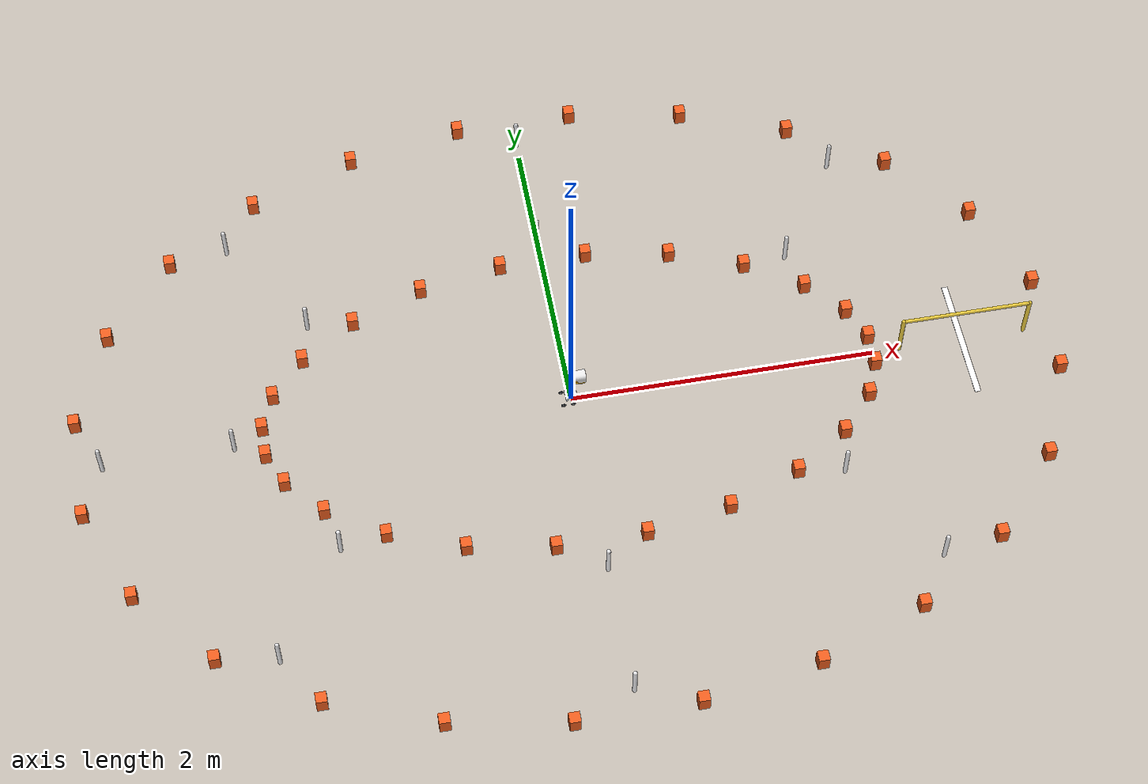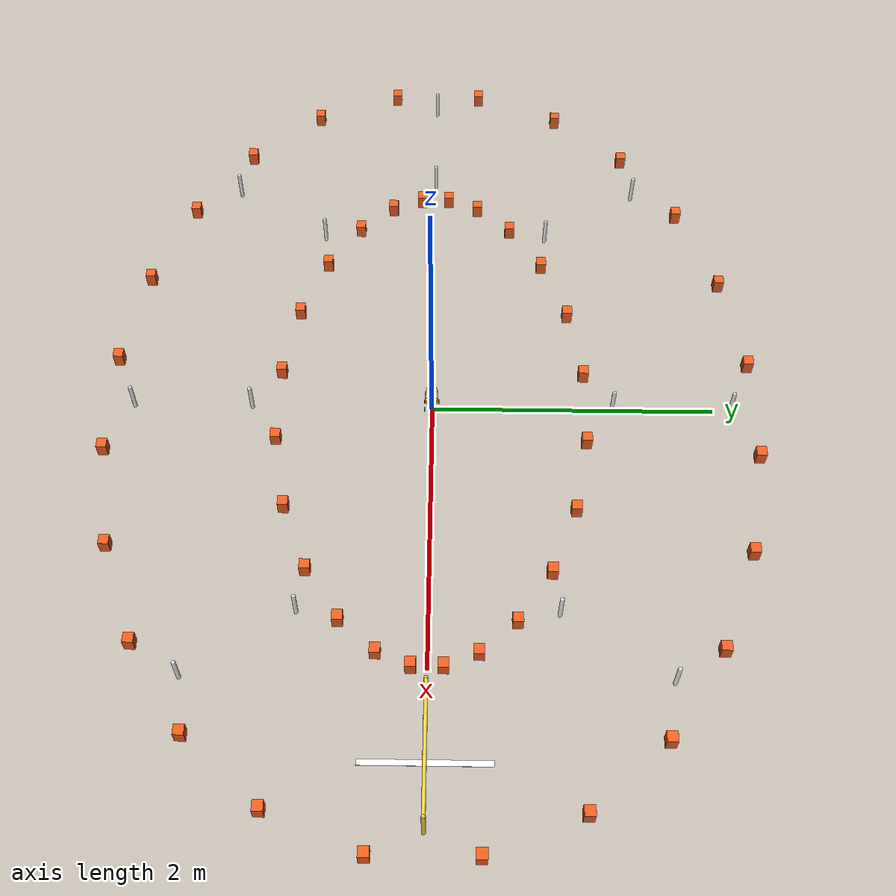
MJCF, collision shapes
<mujoco model="scene_race">
    <include file="robot_allcollisions_rollers_cam.xml" />

    <visual>
        <headlight diffuse="0.25 0.25 0.25" ambient="0.22 0.22 0.24" specular="0.05 0.05 0.05" />
        <rgba haze="0.78 0.83 0.89 1" />
        <global azimuth="140" elevation="-22" offwidth="1920" offheight="1080" />
        <quality shadowsize="8192" offsamples="8" />
        <map fogstart="14" fogend="55" shadowclip="3" shadowscale="1.2" />
    </visual>

    <asset>
        <texture type="skybox" name="sky"
            fileright="sky_right.png" fileleft="sky_left.png"
            filefront="sky_front.png" fileback="sky_back.png"
            fileup="sky_up.png"       filedown="sky_down.png" />
        <texture type="2d" name="groundplane" file="ground_concrete.png" />
        <material name="groundplane" texture="groundplane" texuniform="true" texrepeat="0.6 0.6"
            reflectance="0.02" specular="0.12" shininess="0.08" />
        <material name="gate"      rgba="0.95 0.95 0.96 1" specular="0.4" shininess="0.3"/>
        <material name="gate_start" rgba="0.95 0.82 0.25 1" specular="0.4" shininess="0.3"/>
        <material name="startline" rgba="0.96 0.96 0.97 1"/>
        <material name="cone"      rgba="0.92 0.36 0.12 1" specular="0.2" shininess="0.1"/>
    </asset>

    <worldbody>
        <light name="key"  pos="1.8 -2.2 3.0" dir="-0.45 0.55 -0.75" directional="true"
               diffuse="0.85 0.83 0.78" specular="0.25 0.25 0.25" castshadow="true" />
        <light name="fill" pos="-2.5 2.0 2.0" dir="0.6 -0.5 -0.62" directional="true"
               diffuse="0.22 0.24 0.28" specular="0 0 0" castshadow="false" />
        <geom name="floor" size="0 0 0.05" pos="0 0 0" type="plane" material="groundplane" />

        <!-- RACE:BEGIN -->
        <geom name="gate0_l" type="capsule" size="0.014" material="gate_start"
              fromto="3.020 0.000 0 3.020 0.000 0.30"/>
        <geom name="gate0_r" type="capsule" size="0.014" material="gate_start"
              fromto="2.180 0.000 0 2.180 0.000 0.30"/>
        <geom name="gate0_bar" type="capsule" size="0.012" material="gate_start"
              fromto="3.020 0.000 0.30 2.180 0.000 0.30"/>
        <geom name="start_line" type="box" size="0.02 0.42 0.001"
              pos="2.600 0.000 0.001" material="startline"/>
        <geom name="gate1_l" type="capsule" size="0.014" material="gate"
              fromto="2.068 1.554 0 2.068 1.554 0.22"/>
        <geom name="gate1_r" type="capsule" size="0.014" material="gate"
              fromto="1.609 0.851 0 1.609 0.851 0.22"/>
        <geom name="gate2_l" type="capsule" size="0.014" material="gate"
              fromto="0.000 2.120 0 0.000 2.120 0.22"/>
        <geom name="gate2_r" type="capsule" size="0.014" material="gate"
              fromto="0.000 1.280 0 0.000 1.280 0.22"/>
        <geom name="gate3_l" type="capsule" size="0.014" material="gate"
              fromto="-2.068 1.554 0 -2.068 1.554 0.22"/>
        <geom name="gate3_r" type="capsule" size="0.014" material="gate"
              fromto="-1.609 0.851 0 -1.609 0.851 0.22"/>
        <geom name="gate4_l" type="capsule" size="0.014" material="gate"
              fromto="-3.020 0.000 0 -3.020 0.000 0.22"/>
        <geom name="gate4_r" type="capsule" size="0.014" material="gate"
              fromto="-2.180 0.000 0 -2.180 0.000 0.22"/>
        <geom name="gate5_l" type="capsule" size="0.014" material="gate"
              fromto="-2.068 -1.554 0 -2.068 -1.554 0.22"/>
        <geom name="gate5_r" type="capsule" size="0.014" material="gate"
              fromto="-1.609 -0.851 0 -1.609 -0.851 0.22"/>
        <geom name="gate6_l" type="capsule" size="0.014" material="gate"
              fromto="-0.000 -2.120 0 -0.000 -2.120 0.22"/>
        <geom name="gate6_r" type="capsule" size="0.014" material="gate"
              fromto="-0.000 -1.280 0 -0.000 -1.280 0.22"/>
        <geom name="gate7_l" type="capsule" size="0.014" material="gate"
              fromto="2.068 -1.554 0 2.068 -1.554 0.22"/>
        <geom name="gate7_r" type="capsule" size="0.014" material="gate"
              fromto="1.609 -0.851 0 1.609 -0.851 0.22"/>
        <geom name="cone0" type="box" size="0.035 0.035 0.055" pos="3.166 0.338 0.055" material="cone"/>
        <geom name="cone1" type="box" size="0.035 0.035 0.055" pos="1.990 0.103 0.055" material="cone"/>
        <geom name="cone2" type="box" size="0.035 0.035 0.055" pos="2.910 0.970 0.055" material="cone"/>
        <geom name="cone3" type="box" size="0.035 0.035 0.055" pos="1.896 0.329 0.055" material="cone"/>
        <geom name="cone4" type="box" size="0.035 0.035 0.055" pos="2.454 1.490 0.055" material="cone"/>
        <geom name="cone5" type="box" size="0.035 0.035 0.055" pos="1.675 0.577 0.055" material="cone"/>
        <geom name="cone6" type="box" size="0.035 0.035 0.055" pos="1.854 1.884 0.055" material="cone"/>
        <geom name="cone7" type="box" size="0.035 0.035 0.055" pos="1.315 0.812 0.055" material="cone"/>
        <geom name="cone8" type="box" size="0.035 0.035 0.055" pos="1.154 2.149 0.055" material="cone"/>
        <geom name="cone9" type="box" size="0.035 0.035 0.055" pos="0.840 0.991 0.055" material="cone"/>
        <geom name="cone10" type="box" size="0.035 0.035 0.055" pos="0.394 2.283 0.055" material="cone"/>
        <geom name="cone11" type="box" size="0.035 0.035 0.055" pos="0.290 1.087 0.055" material="cone"/>
        <geom name="cone12" type="box" size="0.035 0.035 0.055" pos="-0.388 2.283 0.055" material="cone"/>
        <geom name="cone13" type="box" size="0.035 0.035 0.055" pos="-0.286 1.088 0.055" material="cone"/>
        <geom name="cone14" type="box" size="0.035 0.035 0.055" pos="-1.149 2.150 0.055" material="cone"/>
        <geom name="cone15" type="box" size="0.035 0.035 0.055" pos="-0.836 0.992 0.055" material="cone"/>
        <geom name="cone16" type="box" size="0.035 0.035 0.055" pos="-1.850 1.886 0.055" material="cone"/>
        <geom name="cone17" type="box" size="0.035 0.035 0.055" pos="-1.312 0.813 0.055" material="cone"/>
        <geom name="cone18" type="box" size="0.035 0.035 0.055" pos="-2.450 1.493 0.055" material="cone"/>
        <geom name="cone19" type="box" size="0.035 0.035 0.055" pos="-1.673 0.579 0.055" material="cone"/>
        <geom name="cone20" type="box" size="0.035 0.035 0.055" pos="-2.908 0.974 0.055" material="cone"/>
        <geom name="cone21" type="box" size="0.035 0.035 0.055" pos="-1.895 0.330 0.055" material="cone"/>
        <geom name="cone22" type="box" size="0.035 0.035 0.055" pos="-3.165 0.343 0.055" material="cone"/>
        <geom name="cone23" type="box" size="0.035 0.035 0.055" pos="-1.989 0.104 0.055" material="cone"/>
        <geom name="cone24" type="box" size="0.035 0.035 0.055" pos="-3.166 -0.338 0.055" material="cone"/>
        <geom name="cone25" type="box" size="0.035 0.035 0.055" pos="-1.990 -0.103 0.055" material="cone"/>
        <geom name="cone26" type="box" size="0.035 0.035 0.055" pos="-2.910 -0.970 0.055" material="cone"/>
        <geom name="cone27" type="box" size="0.035 0.035 0.055" pos="-1.896 -0.329 0.055" material="cone"/>
        <geom name="cone28" type="box" size="0.035 0.035 0.055" pos="-2.454 -1.490 0.055" material="cone"/>
        <geom name="cone29" type="box" size="0.035 0.035 0.055" pos="-1.675 -0.577 0.055" material="cone"/>
        <geom name="cone30" type="box" size="0.035 0.035 0.055" pos="-1.854 -1.884 0.055" material="cone"/>
        <geom name="cone31" type="box" size="0.035 0.035 0.055" pos="-1.315 -0.812 0.055" material="cone"/>
        <geom name="cone32" type="box" size="0.035 0.035 0.055" pos="-1.154 -2.149 0.055" material="cone"/>
        <geom name="cone33" type="box" size="0.035 0.035 0.055" pos="-0.840 -0.991 0.055" material="cone"/>
        <geom name="cone34" type="box" size="0.035 0.035 0.055" pos="-0.394 -2.283 0.055" material="cone"/>
        <geom name="cone35" type="box" size="0.035 0.035 0.055" pos="-0.290 -1.087 0.055" material="cone"/>
        <geom name="cone36" type="box" size="0.035 0.035 0.055" pos="0.388 -2.283 0.055" material="cone"/>
        <geom name="cone37" type="box" size="0.035 0.035 0.055" pos="0.286 -1.088 0.055" material="cone"/>
        <geom name="cone38" type="box" size="0.035 0.035 0.055" pos="1.149 -2.150 0.055" material="cone"/>
        <geom name="cone39" type="box" size="0.035 0.035 0.055" pos="0.836 -0.992 0.055" material="cone"/>
        <geom name="cone40" type="box" size="0.035 0.035 0.055" pos="1.850 -1.886 0.055" material="cone"/>
        <geom name="cone41" type="box" size="0.035 0.035 0.055" pos="1.312 -0.813 0.055" material="cone"/>
        <geom name="cone42" type="box" size="0.035 0.035 0.055" pos="2.450 -1.493 0.055" material="cone"/>
        <geom name="cone43" type="box" size="0.035 0.035 0.055" pos="1.673 -0.579 0.055" material="cone"/>
        <geom name="cone44" type="box" size="0.035 0.035 0.055" pos="2.908 -0.974 0.055" material="cone"/>
        <geom name="cone45" type="box" size="0.035 0.035 0.055" pos="1.895 -0.330 0.055" material="cone"/>
        <geom name="cone46" type="box" size="0.035 0.035 0.055" pos="3.165 -0.343 0.055" material="cone"/>
        <geom name="cone47" type="box" size="0.035 0.035 0.055" pos="1.989 -0.104 0.055" material="cone"/>
        <!-- RACE:END -->
    </worldbody>
    <keyframe>
        <key name="INIT" qpos="
        2.6 -0.35 0.12 0.7071 0 0 0.7071
        0 0 0 0 0 0 0
        0 0 0 0
        0 0 0 0 0 0 0" ctrl="0 0 0 0 0 0 0 0 0 0 0 0 0 0"/>
        <!-- STAND2: trunk shifted ~5mm forward (CoM over ankle axis). Leg pitch
             leaned forward vs old STAND: hip_pitch 30->26.24deg, ankle 30->25.95deg,
             knee 0->0.28deg. -->
        <key name="STAND" qpos="
        2.6 -0.35 0.12 0.7071 0 0 0.7071

        0 -0.08726646259971647 -0.457924 -0.004940 0.452984  0 0
        0.3490658503988659 0.3490658503988659 0 0
        0 0.08726646259971647 0.457924 0.004940 -0.452984 0 0"
         ctrl="
        0 -0.08726646259971647 -0.457924 -0.004940 0.452984
        0.3490658503988659 0.3490658503988659 0 0
        0 0.08726646259971647 0.457924 0.004940 -0.452984"
        />
        <key name="SIT" qpos="
        2.6 -0.35 0.07 0.7071 0 0 0.7071
        0 0 -0.5236 1.0472 0 0
        0 0.5 1.6 0
        0 0 0 0.5236 -1.0472 0 0 0" ctrl="
        0 0 -0.5236 1.0472 0
        0.5 1.6 0 0 0
        0 0.5236 -1.0472 0"/>
        <key name="FOLD" qpos="
        2.6 -0.35 0.07 0.7071 0 0 0.7071
        0 0 1.57 1.57 0 0 0
        1 1 0 0 0
        0 -1.57 -1.57 0 0 0" ctrl="
        0 0 1.57 1.57 0
        1 1 0 0
        0 0 -1.57 -1.57 0"/>
    </keyframe>

</mujoco>

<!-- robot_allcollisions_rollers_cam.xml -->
<!-- Generated using onshape-to-robot -->
<!-- Onshape https://cad.onshape.com/documents/804927696f06d877f3f1803e/w/5b75db19292e71970de02dee/e/ed34b749f5a3718f68024fd5 -->
<mujoco model="microduck">
  <compiler angle="radian" meshdir="assets" autolimits="true"/>
  <default>
    <default class="microduck">
      <joint frictionloss="0.1" armature="0.005"/>
      <position kp="50" dampratio="1"/>
      <default class="visual">
        <geom type="mesh" contype="0" conaffinity="0" group="2"/>
      </default>
      <default class="collision">
        <geom group="3"/>
      </default>
    </default>
  </default>
  <!-- Additional joints_properties.xml -->
  <default>
    <default class="perfect_actuator">
      <geom contype="0" conaffinity="0"/>
      <joint damping="0.15" frictionloss="0.1" armature="0.001"/>
      <position kp="10.0" kv="0.1" forcerange="-20.0 20.0"/>
    </default>
    <default class="chosen_actuator_old">
      <geom contype="0" conaffinity="0"/>
      <joint damping="0.048" frictionloss="0.006" armature="0.002"/>
      <position kp="0.52" kv="0.0" forcerange="-0.91 0.91" ctrlrange="-10.0 10.0"/>
    </default>
    <default class="chosen_actuator_new">
      <!-- removing contaminated data -->
      <geom contype="0" conaffinity="0"/>
      <joint damping="0.041" frictionloss="0.032" armature="0.002"/>
      <position kp="0.386" kv="0.0" forcerange="-0.67 0.67" ctrlrange="-10.0 10.0"/>
    </default>
    <default class="chosen_actuator_antoine">
      <geom contype="0" conaffinity="0"/>
      <joint damping="0.044" frictionloss="0.013" armature="0.0017"/>
      <position kp="0.43" kv="0.0" forcerange="-0.75 0.75" ctrlrange="-10.0 10.0"/>
    </default>
    <default class="chosen_actuator">
      <!-- marc -->
      <geom contype="0" conaffinity="0"/>
      <joint damping="0.053" frictionloss="0.0048" armature="0.0018"/>
      <!-- 200 kp -->
      <position kp="0.55" kv="0.0" forcerange="-0.96 0.96" ctrlrange="-10.0 10.0"/>
      <!-- 125 kp -->
    </default>
    <default class="passive_wheel">
      <geom contype="0" conaffinity="0"/>
      <joint damping="0.0" frictionloss="0.0" armature="0.0001"/>
    </default>
    <default class="passive_joint">
      <geom contype="0" conaffinity="0"/>
      <joint damping="0.0" frictionloss="0.0" armature="0.0001"/>
    </default>
  </default>
  <!-- Additional sensors.xml -->
  <sensor>
    <framequat name="orientation" objtype="site" noise="0.001" objname="imu"/>
    <gyro name="angular-velocity" site="imu" noise="0.005"/>
    <gyro name="imu_ang_vel" site="imu"/>
    <velocimeter name="imu_lin_vel" site="imu"/>
    <accelerometer name="imu_accel" site="imu"/>
    <subtreeangmom name="root_angmom" body="trunk_base"/>
  </sensor>
  <!-- Additional additional.xml -->
  <default>
    <default class="self_collision_only">
      <geom group="3" contype="2" conaffinity="2"/>
    </default>
    <equality solref="0.002 1" solimp="0.99 0.999 0.0005 0.5 2"/>
  </default>
  <!-- Jaw collision mesh overlaps the bottom head shell by ~2cm because the closed -->
  <!-- loop linkage positions it inside the head. Without these excludes the -->
  <!-- self-collision sensor reports a constant 2 contacts, giving a -->
  <!-- permanent ~-2.0 reward penalty in the standup env. -->
  <worldbody>
    <!-- Link trunk_base -->
    <body name="trunk_base" pos="0 0 0.12" quat="1 0 0 0" childclass="microduck">
      <freejoint name="trunk_base_freejoint"/>
      <inertial pos="-0.0226332 -2.70828e-05 0.00280064" mass="0.199224" fullinertia="0.000123975 0.000145931 0.000115351 7.1651e-08 -2.06915e-05 1.32429e-07"/>
      <!-- Part seeed_bearing__configuration__22x16x4 -->
      <geom type="mesh" class="visual" pos="0.006 0.0175 -0.005" quat="1 -0 -0 0" mesh="seeed_bearing__configuration__22x16x4" material="seeed_bearing__configuration__22x16x4_material"/>
      <!-- Part right_shell -->
      <geom type="mesh" class="visual" pos="0.004 -0.0005 -0.0175" quat="0.707107 -0 -0 0.707107" mesh="right_shell" material="right_shell_material"/>
      <!-- Part banana_pcb_locker -->
      <geom type="mesh" class="visual" pos="0.0042 -0 -0.0175215" quat="0.707107 -0 0 0.707107" mesh="banana_pcb_locker" material="banana_pcb_locker_material"/>
      <!-- Part trunk_base -->
      <geom type="mesh" class="visual" pos="0.004 -0 -0.0175" quat="0.707107 -0 -0 0.707107" mesh="trunk_base" material="trunk_base_material"/>
      <!-- Part xl330 -->
      <geom type="mesh" class="visual" pos="0.006 0.0175 0.0115" quat="0 0.707107 -0 0.707107" mesh="xl330" material="xl330_material"/>
      <!-- Part power_support -->
      <geom type="mesh" class="visual" pos="0.004 -0 -0.0175215" quat="0.707107 -0 0 0.707107" mesh="power_support" material="power_support_material"/>
      <geom type="mesh" class="self_collision_only" pos="0.004 -0 -0.0175215" quat="0.707107 -0 0 0.707107" mesh="power_support" material="power_support_material"/>
      <!-- Part np_f970 -->
      <geom type="mesh" class="visual" pos="-0.0359693 0 -0.00385049" quat="0.00617059 0.70708 -0.70708 -0.00617059" mesh="np_f970" material="np_f970_material"/>
      <geom type="mesh" class="collision" pos="-0.0359693 0 -0.00385049" quat="0.00617059 0.70708 -0.70708 -0.00617059" mesh="np_f970" material="np_f970_material"/>
      <!-- Part xl330_2 -->
      <geom type="mesh" class="visual" pos="0.006 -0.0175 0.0115" quat="0 0.707107 -0 0.707107" mesh="xl330" material="xl330_material"/>
      <!-- Part left_shell -->
      <geom type="mesh" class="visual" pos="0.004 -0 -0.0175785" quat="0.707107 0 -0 0.707107" mesh="left_shell" material="left_shell_material"/>
      <!-- Part seeed_bearing__configuration__22x16x4_2 -->
      <geom type="mesh" class="visual" pos="0.006 -0.0175 -0.005" quat="1 -0 -0 0" mesh="seeed_bearing__configuration__22x16x4" material="seeed_bearing__configuration__22x16x4_material"/>
      <!-- Frame imu -->
      <site group="3" name="imu" pos="-0.021 6.64098e-05 -0.0146984" quat="1 -0 -0 0"/>
      <!-- Link yaw2roll -->
      <body name="yaw2roll" pos="0.006 0.0175 -0.005" quat="0 -0.707107 -0.707107 -0">
        <!-- Joint from trunk_base to yaw2roll -->
        <joint axis="0 0 1" name="left_hip_yaw" type="hinge" range="-0.4363323129985824 0.5235987755982988" class="chosen_actuator"/>
        <inertial pos="-8.8e-11 0.00099414 0.0168917" mass="0.0230406" fullinertia="4.1964e-06 3.41752e-06 2.3265e-06 -0 -0 -5.0881e-08"/>
        <!-- Part yaw2roll -->
        <geom type="mesh" class="visual" pos="-0.0175 -0.002 0.0125" quat="0 1 0 0" mesh="yaw2roll" material="yaw2roll_material"/>
        <!-- Part xl330_3 -->
        <geom type="mesh" class="visual" pos="-0 0 0.0125" quat="0 -0.707107 0.707107 -0" mesh="xl330" material="xl330_material"/>
        <!-- Part seeed_bearing__configuration__22x16x4_3 -->
        <geom type="mesh" class="visual" pos="-0 0.0165 0.0125" quat="0.5 0.5 0.5 -0.5" mesh="seeed_bearing__configuration__22x16x4" material="seeed_bearing__configuration__22x16x4_material"/>
        <!-- Part bearing_roll -->
        <geom type="mesh" class="visual" pos="-0.0175 -0.002 0.0125" quat="0 -1 -0 -0" mesh="bearing_roll" material="bearing_roll_material"/>
        <!-- Link hip_l -->
        <body name="hip_l" pos="0 0.0165 0.0125" quat="0.707107 -0.707107 -0 -0">
          <!-- Joint from yaw2roll to hip_l -->
          <joint axis="0 0 1" name="left_hip_roll" type="hinge" range="-0.3839724354387525 0.3839724354387525" class="chosen_actuator"/>
          <inertial pos="0.014815 1.6179e-08 -0.00829992" mass="0.00618934" fullinertia="8.60626e-07 1.15753e-06 6.51588e-07 1e-12 3.89882e-07 -1e-12"/>
          <!-- Part seeed_bearing__configuration__22x16x4_4 -->
          <geom type="mesh" class="visual" pos="0.021 0 -0.0185" quat="0.5 0.5 0.5 0.5" mesh="seeed_bearing__configuration__22x16x4" material="seeed_bearing__configuration__22x16x4_material"/>
          <!-- Part hip_l -->
          <geom type="mesh" class="visual" pos="-0.0175 0 -0.0185" quat="0.707107 -0.707107 0 -0" mesh="hip_l" material="hip_l_material"/>
          <geom type="mesh" class="collision" pos="-0.0175 0 -0.0185" quat="0.707107 -0.707107 0 -0" mesh="hip_l" material="hip_l_material"/>
          <!-- Link upper_leg_left -->
          <body name="upper_leg_left" pos="0.025 0 -0.0185" quat="0.5 -0.5 0.5 -0.5">
            <!-- Joint from hip_l to upper_leg_left -->
            <joint axis="0 0 1" name="left_hip_pitch" type="hinge" range="-1.570796326795005 1.5707963267947882" class="chosen_actuator"/>
            <inertial pos="0.006766 0.0228838 0.0134531" mass="0.0482067" fullinertia="1.68753e-05 1.03691e-05 1.98269e-05 -4.41852e-06 2.27982e-07 3.89298e-07"/>
            <!-- Part upper_leg_left -->
            <geom type="mesh" class="visual" pos="-0 -0 -0.0425" quat="0.5 -0.5 -0.5 -0.5" mesh="upper_leg_left" material="upper_leg_left_material"/>
            <!-- Part xl330_4 -->
            <geom type="mesh" class="visual" pos="0.022 0.0357771 0.0125" quat="0 -0.707107 -0 -0.707107" mesh="xl330" material="xl330_material"/>
            <!-- Part upper_leg_rigidity_plate -->
            <geom type="mesh" class="visual" pos="0 -0 -0.0425" quat="0.5 -0.5 -0.5 -0.5" mesh="upper_leg_rigidity_plate" material="upper_leg_rigidity_plate_material"/>
            <!-- Part seeed_bearing__configuration__22x16x4_5 -->
            <geom type="mesh" class="visual" pos="0.022 0.0357771 -0.004" quat="0 0 0 1" mesh="seeed_bearing__configuration__22x16x4" material="seeed_bearing__configuration__22x16x4_material"/>
            <!-- Part xl330_5 -->
            <geom type="mesh" class="visual" pos="-0 -0 0.0125" quat="0.5 0.5 -0.5 0.5" mesh="xl330" material="xl330_material"/>
            <!-- Link leg -->
            <body name="leg" pos="0.022 0.0357771 -0.004" quat="0 0.707107 0.707107 0">
              <!-- Joint from upper_leg_left to leg -->
              <joint axis="0 0 1" name="left_knee" type="hinge" range="-1.570796326795012 1.570796326794781" class="chosen_actuator"/>
              <inertial pos="-1.52e-10 0.0318937 -0.00953505" mass="0.0215844" fullinertia="5.25056e-06 2.15507e-06 4.33925e-06 -1e-12 0 7.65005e-07"/>
              <!-- Part leg -->
              <geom type="mesh" class="visual" pos="-0.022 0.0357771 0.0385" quat="0.5 0.5 0.5 -0.5" mesh="leg" material="leg_material"/>
              <geom type="mesh" class="collision" pos="-0.022 0.0357771 0.0385" quat="0.5 0.5 0.5 -0.5" mesh="leg" material="leg_material"/>
              <!-- Part xl330_6 -->
              <geom type="mesh" class="visual" pos="0 0.042 -0.0115" quat="0.5 -0.5 -0.5 -0.5" mesh="xl330" material="xl330_material"/>
              <!-- Link ankle_l_v1 -->
              <body name="ankle_l_v1" pos="0 0.042 -0.026" quat="0 1 -0 0">
                <!-- Joint from leg to ankle_l_v1 -->
                <joint axis="0 0 1" name="left_ankle" type="hinge" range="-1.5707963267949054 1.5707963267948877" class="chosen_actuator"/>
                <inertial pos="-0.00680626 -0.0143677 -0.0151851" mass="0.02087" fullinertia="4.85529e-06 9.6767e-06 8.22681e-06 -3.18897e-07 5.6657e-08 1.31522e-07"/>
                <!-- Part roller_blade -->
                <geom type="mesh" class="visual" pos="-0.022 0.00622291 -0.0647" quat="0.5 -0.5 -0.5 -0.5" mesh="roller_blade" material="roller_blade_material"/>
                <!-- Part seeed_bearing__configuration_default -->
                <geom type="mesh" class="visual" pos="0 0 -0.0314" quat="0 -0 0 -1" mesh="seeed_bearing__configuration_default" material="seeed_bearing__configuration_default_material"/>
                <!-- Part ankle_l_v1 -->
                <geom type="mesh" class="visual" pos="-0.022 0.00622291 -0.0647" quat="0.5 -0.5 -0.5 -0.5" mesh="ankle_l_v1" material="ankle_l_v1_material"/>
                <!-- Frame left_foot -->
                <site group="3" name="left_foot" pos="-0 -0.0475 -0.0147" quat="0 -0 -0.707107 -0.707107"/>
                <!-- Link tire -->
                <body name="tire" pos="-0.0395 -0.0325 -0.0147" quat="1 -0 0 -0">
                  <!-- Joint from ankle_l_v1 to tire -->
                  <joint axis="0 0 1" name="passive_LF_wheel" class="passive_joint"/>
                  <inertial pos="-0 0 0" mass="0.00447401" fullinertia="2.8556e-07 2.8556e-07 5.3687e-07 -0 -6e-12 0"/>
                  <!-- Part tire -->
                  <geom type="mesh" class="visual" pos="0.0175 0.0387229 -0.05" quat="0.5 -0.5 -0.5 -0.5" mesh="tire" material="tire_material"/>
                  <geom type="mesh" class="collision" pos="0.0175 0.0387229 -0.05" quat="0.5 -0.5 -0.5 -0.5" mesh="tire" material="tire_material"/>
                  <!-- Part rim -->
                  <geom type="mesh" class="visual" pos="0.0175 0.0387229 -0.05" quat="0.5 -0.5 -0.5 -0.5" mesh="rim" material="rim_material"/>
                </body>
                <!-- Link tire_2 -->
                <body name="tire_2" pos="0.0255 -0.0325 -0.0147" quat="1 -0 0 -0">
                  <!-- Joint from ankle_l_v1 to tire_2 -->
                  <joint axis="0 0 1" name="passive_LR_wheel" class="passive_joint"/>
                  <inertial pos="-0 0 -0" mass="0.00447401" fullinertia="2.8556e-07 2.8556e-07 5.3687e-07 -0 -6e-12 0"/>
                  <!-- Part rim_2 -->
                  <geom type="mesh" class="visual" pos="0.0175 0.0387229 -0.05" quat="0.5 -0.5 -0.5 -0.5" mesh="rim" material="rim_material"/>
                  <!-- Part tire_2 -->
                  <geom type="mesh" class="visual" pos="0.0175 0.0387229 -0.05" quat="0.5 -0.5 -0.5 -0.5" mesh="tire" material="tire_material"/>
                  <geom type="mesh" class="collision" pos="0.0175 0.0387229 -0.05" quat="0.5 -0.5 -0.5 -0.5" mesh="tire" material="tire_material"/>
                </body>
              </body>
            </body>
          </body>
        </body>
      </body>
      <!-- Link neck -->
      <body name="neck" pos="0.026 0.0145 0.0324215" quat="0 0 0.707107 -0.707107">
        <!-- Joint from trunk_base to neck -->
        <joint axis="0 0 1" name="neck_pitch" type="hinge" range="-1.5707963267948966 1.0471975511965976" class="chosen_actuator"/>
        <inertial pos="0 -0.025 0.0141665" mass="0.0368414" fullinertia="1.72925e-05 3.12694e-06 1.63707e-05 0 0 0"/>
        <!-- Part neck -->
        <geom type="mesh" class="visual" pos="0.022 0.05 0.028" quat="0.5 0.5 0.5 -0.5" mesh="neck" material="neck_material"/>
        <!-- Part xl330_7 -->
        <geom type="mesh" class="visual" pos="0 0 0.0145" quat="0.5 -0.5 -0.5 -0.5" mesh="xl330" material="xl330_material"/>
        <!-- Part xl330_8 -->
        <geom type="mesh" class="visual" pos="0 -0.05 0.0145" quat="0.5 0.5 -0.5 0.5" mesh="xl330" material="xl330_material"/>
        <!-- Part neck_2 -->
        <geom type="mesh" class="visual" pos="0.022 0.05 0.003" quat="0.5 0.5 0.5 -0.5" mesh="neck" material="neck_material"/>
        <!-- Link neck_pitch -->
        <body name="neck_pitch" pos="0 -0.05 -0" quat="0 1 0 0">
          <camera name="duck_eye" pos="-0.028 0.012 -0.0145" fovy="78"
                  xyaxes="0 0 -1  0 1 0"/>
          <!-- Joint from neck to neck_pitch -->
          <joint axis="0 0 1" name="head_pitch" type="hinge" range="-1.5707963267948974 1.5707963267948957" class="chosen_actuator"/>
          <inertial pos="-6.533e-09 0.0116641 -0.0145" mass="0.00572" fullinertia="1.09186e-06 9.66855e-07 5.12111e-07 0 0 0"/>
          <!-- Part neck_pitch -->
          <geom type="mesh" class="visual" pos="-0 0.0287931 -0.0145" quat="0.5 -0.5 -0.5 -0.5" mesh="neck_pitch" material="neck_pitch_material"/>
          <!-- Part seeed_bearing__configuration__22x16x4_6 -->
          <geom type="mesh" class="visual" pos="-0 0.0207931 -0.0145" quat="0.707107 0.707107 0 0" mesh="seeed_bearing__configuration__22x16x4" material="seeed_bearing__configuration__22x16x4_material"/>
          <!-- Link yaw_roll_motion -->
          <body name="yaw_roll_motion" pos="-0 0.0186931 -0.0145" quat="0 0 -0.707107 -0.707107">
            <!-- Joint from neck_pitch to yaw_roll_motion -->
            <joint axis="0 0 1" name="head_yaw" type="hinge" range="-2.967059728390373 2.967059728390348" class="chosen_actuator"/>
            <inertial pos="-0.000166657 -0.00500964 0.0178065" mass="0.0486" fullinertia="6.97903e-06 8.10293e-06 9.57884e-06 3.21657e-07 -3.4797e-08 3.4295e-07"/>
            <!-- Part yaw_roll_motion -->
            <geom type="mesh" class="visual" pos="0 0 0.01" quat="0.707107 0 -0 0.707107" mesh="yaw_roll_motion" material="yaw_roll_motion_material"/>
            <!-- Part xl330_9 -->
            <geom type="mesh" class="visual" pos="0 0 0.0145" quat="0.5 -0.5 -0.5 -0.5" mesh="xl330" material="xl330_material"/>
            <!-- Part seeed_bearing__configuration__22x16x4_7 -->
            <geom type="mesh" class="visual" pos="-0.016 0 0.0145" quat="0.707107 -0 -0.707107 -0" mesh="seeed_bearing__configuration__22x16x4" material="seeed_bearing__configuration__22x16x4_material"/>
            <!-- Part seeed_bearing__configuration__22x16x4_8 -->
            <geom type="mesh" class="visual" pos="0.018 0 0.0145" quat="0.707107 -0 -0.707107 -0" mesh="seeed_bearing__configuration__22x16x4" material="seeed_bearing__configuration__22x16x4_material"/>
            <!-- Link jaw_soft -->
            <body name="jaw_soft" pos="-0.0179 0 0.0145" quat="0.707107 -0 -0.707107 -0">
              <!-- Joint from yaw_roll_motion to jaw_soft -->
              <joint axis="0 0 1" name="head_roll" type="hinge" range="-0.43633231299859127 0.4363323129985735" class="chosen_actuator"/>
              <inertial pos="0.00460523 0.00120047 -0.0324761" mass="0.188766" fullinertia="0.000320812 0.0002541 0.000149882 -6.32292e-07 6.57154e-06 4.18476e-06"/>
              <!-- Part lens -->
              <geom type="mesh" class="visual" pos="0.0155 -9.13778e-05 -0.05548" quat="0.5 -0.5 0.5 -0.5" mesh="lens" material="lens_material"/>
              <!-- Part face_part -->
              <geom type="mesh" class="visual" pos="-0.0045 -9.13778e-05 -0.0178" quat="0.5 0.5 0.5 0.5" mesh="face_part" material="face_part_material"/>
              <!-- Part xl330_10 -->
              <geom type="mesh" class="visual" pos="0.003 0.0255 -0.018" quat="0.707107 0 -0 -0.707107" mesh="xl330" material="xl330_material"/>
              <!-- Part jaw_soft -->
              <geom type="mesh" class="visual" pos="-0.0046 0 -0.0179996" quat="0.5 0.5 0.5 0.5" mesh="jaw_soft" material="jaw_soft_material"/>
              <!-- Part motor_support -->
              <geom type="mesh" class="visual" pos="-0.0045 0 -0.018" quat="0.5 0.5 0.5 0.5" mesh="motor_support" material="motor_support_material"/>
              <!-- Part top_head_shell -->
              <geom type="mesh" class="visual" pos="-0.0045 -0 -0.018" quat="0.5 0.5 0.5 0.5" mesh="top_head_shell" material="top_head_shell_material"/>
              <geom type="mesh" class="collision" pos="-0.0045 -0 -0.018" quat="0.5 0.5 0.5 0.5" mesh="top_head_shell" material="top_head_shell_material"/>
              <!-- Part xl330_11 -->
              <geom type="mesh" class="visual" pos="0 0 0.0145" quat="0.5 -0.5 -0.5 -0.5" mesh="xl330" material="xl330_material"/>
              <!-- Part seeed_bearing__configuration_default_2 -->
              <geom type="mesh" class="visual" pos="0.0032 -0.04 -0.018" quat="0.5 -0.5 0.5 0.5" mesh="seeed_bearing__configuration_default" material="seeed_bearing__configuration_default_material"/>
              <!-- Part elec_rpi_robot_hat_pcb -->
              <geom type="mesh" class="visual" pos="0.02694 0.0289936 -0.0519" quat="0.707107 0 0 -0.707107" mesh="elec_rpi_robot_hat_pcb" material="elec_rpi_robot_hat_pcb_material"/>
              <!-- Part soft_mouth_top -->
              <geom type="mesh" class="visual" pos="-0.00420071 1.7776e-08 -0.0180814" quat="0.5 0.5 0.5 0.5" mesh="soft_mouth_top" material="soft_mouth_top_material"/>
              <!-- Part noenoeil -->
              <geom type="mesh" class="visual" pos="-0.0045 -9.13778e-05 -0.0178" quat="0.5 0.5 0.5 0.5" mesh="noenoeil" material="noenoeil_material"/>
              <!-- Part jaw -->
              <geom type="mesh" class="visual" pos="-0.0045 0 -0.018" quat="0.5 0.5 0.5 0.5" mesh="jaw" material="jaw_material"/>
              <geom type="mesh" class="collision" pos="-0.0045 0 -0.018" quat="0.5 0.5 0.5 0.5" mesh="jaw" material="jaw_material"/>
              <!-- Part bottom_head_shell -->
              <geom type="mesh" class="visual" pos="-0.0043 -0 -0.018" quat="0.5 0.5 0.5 0.5" mesh="bottom_head_shell" material="bottom_head_shell_material"/>
              <geom type="mesh" class="collision" pos="-0.0043 -0 -0.018" quat="0.5 0.5 0.5 0.5" mesh="bottom_head_shell" material="bottom_head_shell_material"/>
              <!-- Part m12_lens_holder -->
              <geom type="mesh" class="visual" pos="0.0155 -9.13778e-05 -0.05558" quat="0.5 -0.5 0.5 -0.5" mesh="m12_lens_holder" material="m12_lens_holder_material"/>
              <!-- Part pcb__raspberry_pi_zero_2_w -->
              <geom type="mesh" class="visual" pos="0.015435 -1.13778e-05 -0.06001" quat="0.5 -0.5 -0.5 0.5" mesh="pcb__raspberry_pi_zero_2_w" material="pcb__raspberry_pi_zero_2_w_material"/>
              <!-- Part speaker -->
              <geom type="mesh" class="visual" pos="0.01 -0.016786 0.0260226" quat="0.5 0.5 0.5 0.5" mesh="speaker" material="speaker_material"/>
              <!-- Frame head_camera -->
              <site group="3" name="head_camera" pos="0.0155 -9.13778e-05 -0.0733" quat="0.707107 0 0.707107 -0"/>
              <camera name="head_camera" pos="0.0155 -9.13778e-05 -0.0733" quat="0 0 -1 0"/>
              <!-- Frame tof -->
              <site group="3" name="tof" pos="0.0135 0.0224086 -0.0733" quat="0.707107 0 0.707107 -0"/>
              <!-- Frame head_imu -->
              <site group="3" name="head_imu" pos="0.0152323 0.000111069 -0.05106" quat="1 0 0 -0"/>
              <!-- Frame mouth_tip -->
              <site group="3" name="mouth_tip" pos="-0.00809334 -0 -0.0777383" quat="0.704015 0 0.710185 -0"/>
            </body>
          </body>
        </body>
      </body>
      <!-- Link bearing_roll -->
      <body name="bearing_roll" pos="0.006 -0.0175 -0.005" quat="0 0.707107 0.707107 0">
        <!-- Joint from trunk_base to bearing_roll -->
        <joint axis="0 0 1" name="right_hip_yaw" type="hinge" range="-0.5235987755982988 0.4363323129985824" class="chosen_actuator"/>
        <inertial pos="-8.8e-11 0.00099414 0.0168917" mass="0.0230406" fullinertia="4.1964e-06 3.41752e-06 2.3265e-06 -0 -0 -5.0881e-08"/>
        <!-- Part yaw2roll_2 -->
        <geom type="mesh" class="visual" pos="-0.0175 -0.002 0.0125" quat="0 1 0 0" mesh="yaw2roll" material="yaw2roll_material"/>
        <!-- Part xl330_12 -->
        <geom type="mesh" class="visual" pos="-0 0 0.0125" quat="0 -0.707107 0.707107 -0" mesh="xl330" material="xl330_material"/>
        <!-- Part bearing_roll_2 -->
        <geom type="mesh" class="visual" pos="-0.0175 -0.002 0.0125" quat="0 -1 -0 -0" mesh="bearing_roll" material="bearing_roll_material"/>
        <!-- Part seeed_bearing__configuration__22x16x4_9 -->
        <geom type="mesh" class="visual" pos="-0 0.0165 0.0125" quat="0.5 0.5 0.5 -0.5" mesh="seeed_bearing__configuration__22x16x4" material="seeed_bearing__configuration__22x16x4_material"/>
        <!-- Link hip_l_2 -->
        <body name="hip_l_2" pos="-0 0.0165 0.0125" quat="0 -0 0.707107 0.707107">
          <!-- Joint from bearing_roll to hip_l_2 -->
          <joint axis="0 0 1" name="right_hip_roll" type="hinge" range="-0.3839724354387525 0.3839724354387525" class="chosen_actuator"/>
          <inertial pos="0.014815 1.6212e-08 -0.00829992" mass="0.00618934" fullinertia="8.60626e-07 1.15753e-06 6.51588e-07 1e-12 3.89882e-07 -1e-12"/>
          <!-- Part hip_l_2 -->
          <geom type="mesh" class="visual" pos="-0.0175 0 -0.0185" quat="0.707107 -0.707107 -0 -0" mesh="hip_l" material="hip_l_material"/>
          <geom type="mesh" class="collision" pos="-0.0175 0 -0.0185" quat="0.707107 -0.707107 -0 -0" mesh="hip_l" material="hip_l_material"/>
          <!-- Part seeed_bearing__configuration__22x16x4_10 -->
          <geom type="mesh" class="visual" pos="0.025 0 -0.0185" quat="0.5 0.5 -0.5 -0.5" mesh="seeed_bearing__configuration__22x16x4" material="seeed_bearing__configuration__22x16x4_material"/>
          <!-- Link upper_leg_right -->
          <body name="upper_leg_right" pos="0.025 0 -0.0185" quat="0.5 -0.5 0.5 -0.5">
            <!-- Joint from hip_l_2 to upper_leg_right -->
            <joint axis="0 0 1" name="right_hip_pitch" type="hinge" range="-1.5707963267949268 1.5707963267948664" class="chosen_actuator"/>
            <inertial pos="-0.006766 0.0228838 0.0134531" mass="0.0482067" fullinertia="1.68753e-05 1.03691e-05 1.98269e-05 4.41852e-06 -2.27982e-07 3.89298e-07"/>
            <!-- Part xl330_13 -->
            <geom type="mesh" class="visual" pos="-0.022 0.0357771 0.0125" quat="0.707107 -0 -0.707107 -0" mesh="xl330" material="xl330_material"/>
            <!-- Part seeed_bearing__configuration__22x16x4_11 -->
            <geom type="mesh" class="visual" pos="-0.022 0.0357771 0" quat="0 1 -0 -0" mesh="seeed_bearing__configuration__22x16x4" material="seeed_bearing__configuration__22x16x4_material"/>
            <!-- Part upper_leg_rigidity_plate_2 -->
            <geom type="mesh" class="visual" pos="0 0 0.0435" quat="0.5 -0.5 0.5 0.5" mesh="upper_leg_rigidity_plate" material="upper_leg_rigidity_plate_material"/>
            <!-- Part upper_leg_right -->
            <geom type="mesh" class="visual" pos="-0 0 -0.0425" quat="0.5 -0.5 0.5 0.5" mesh="upper_leg_right" material="upper_leg_right_material"/>
            <!-- Part xl330_14 -->
            <geom type="mesh" class="visual" pos="0 0 0.0125" quat="0.5 0.5 -0.5 0.5" mesh="xl330" material="xl330_material"/>
            <!-- Link leg_2 -->
            <body name="leg_2" pos="-0.022 0.0357771 -0.004" quat="0 1 -0 -0">
              <!-- Joint from upper_leg_right to leg_2 -->
              <joint axis="0 0 1" name="right_knee" type="hinge" range="-1.570796326794932 1.570796326794861" class="chosen_actuator"/>
              <inertial pos="-0.0318937 -1.52e-10 -0.00953505" mass="0.0215844" fullinertia="2.15507e-06 5.25056e-06 4.33925e-06 1e-12 -7.65005e-07 0"/>
              <!-- Part xl330_15 -->
              <geom type="mesh" class="visual" pos="-0.042 0 -0.0115" quat="0.707107 -0 -0.707107 -0" mesh="xl330" material="xl330_material"/>
              <!-- Part leg_2 -->
              <geom type="mesh" class="visual" pos="-0.0357771 -0.022 0.0385" quat="0.707107 0 0.707107 -0" mesh="leg" material="leg_material"/>
              <geom type="mesh" class="collision" pos="-0.0357771 -0.022 0.0385" quat="0.707107 0 0.707107 -0" mesh="leg" material="leg_material"/>
              <!-- Link ankle_r_v1 -->
              <body name="ankle_r_v1" pos="-0.042 0 -0.026" quat="0 -0.707107 -0.707107 0">
                <!-- Joint from leg_2 to ankle_r_v1 -->
                <joint axis="0 0 1" name="right_ankle" type="hinge" range="-1.5707963267949063 1.5707963267948868" class="chosen_actuator"/>
                <inertial pos="0.00680653 -0.0143679 -0.0149822" mass="0.0208701" fullinertia="4.8595e-06 9.68066e-06 8.22663e-06 3.18865e-07 -6.7107e-08 1.66791e-07"/>
                <!-- Part ankle_r_v1 -->
                <geom type="mesh" class="visual" pos="0.022 0.00622291 -0.0647" quat="0.5 -0.5 0.5 0.5" mesh="ankle_r_v1" material="ankle_r_v1_material"/>
                <!-- Part seeed_bearing__configuration_default_3 -->
                <geom type="mesh" class="visual" pos="0 0 -0.0284" quat="0 1 0 -0" mesh="seeed_bearing__configuration_default" material="seeed_bearing__configuration_default_material"/>
                <!-- Part roller_blade_2 -->
                <geom type="mesh" class="visual" pos="0.022 0.00622291 0.0355181" quat="0.5 -0.5 0.5 0.5" mesh="roller_blade" material="roller_blade_material"/>
                <!-- Frame right_foot -->
                <site group="3" name="right_foot" pos="0 -0.0475 -0.0144819" quat="0.707107 -0.707107 -0 0"/>
                <!-- Link tire_3 -->
                <body name="tire_3" pos="0.0395 -0.0325 -0.0144819" quat="0 -0 1 -0">
                  <!-- Joint from ankle_r_v1 to tire_3 -->
                  <joint axis="0 0 1" name="passive_RF_wheel" class="passive_joint"/>
                  <inertial pos="-0 -0 0" mass="0.00447401" fullinertia="2.8556e-07 2.8556e-07 5.3687e-07 -0 -6e-12 -0"/>
                  <!-- Part tire_3 -->
                  <geom type="mesh" class="visual" pos="0.0175 0.0387229 -0.05" quat="0.5 -0.5 -0.5 -0.5" mesh="tire" material="tire_material"/>
                  <geom type="mesh" class="collision" pos="0.0175 0.0387229 -0.05" quat="0.5 -0.5 -0.5 -0.5" mesh="tire" material="tire_material"/>
                  <!-- Part rim_3 -->
                  <geom type="mesh" class="visual" pos="0.0175 0.0387229 -0.05" quat="0.5 -0.5 -0.5 -0.5" mesh="rim" material="rim_material"/>
                </body>
                <!-- Link tire_4 -->
                <body name="tire_4" pos="-0.0255 -0.0325 -0.0144819" quat="0 -0 1 -0">
                  <!-- Joint from ankle_r_v1 to tire_4 -->
                  <joint axis="0 0 1" name="passive_RR_wheel" class="passive_joint"/>
                  <inertial pos="-0 -0 0" mass="0.00447401" fullinertia="2.8556e-07 2.8556e-07 5.3687e-07 -0 -6e-12 -0"/>
                  <!-- Part rim_4 -->
                  <geom type="mesh" class="visual" pos="0.0175 0.0387229 -0.05" quat="0.5 -0.5 -0.5 -0.5" mesh="rim" material="rim_material"/>
                  <!-- Part tire_4 -->
                  <geom type="mesh" class="visual" pos="0.0175 0.0387229 -0.05" quat="0.5 -0.5 -0.5 -0.5" mesh="tire" material="tire_material"/>
                  <geom type="mesh" class="collision" pos="0.0175 0.0387229 -0.05" quat="0.5 -0.5 -0.5 -0.5" mesh="tire" material="tire_material"/>
                </body>
              </body>
            </body>
          </body>
        </body>
      </body>
    </body>
  </worldbody>
  <asset>
    <mesh file="elec_rpi_robot_hat_pcb.stl"/>
    <mesh file="soft_mouth_top.stl"/>
    <mesh file="speaker.stl"/>
    <mesh file="top_head_shell.stl"/>
    <mesh file="power_support.stl"/>
    <mesh file="motor_support.stl"/>
    <mesh file="upper_leg_left.stl"/>
    <mesh file="roller_blade.stl"/>
    <mesh file="m12_lens_holder.stl"/>
    <mesh file="hip_l.stl"/>
    <mesh file="lens.stl"/>
    <mesh file="xl330.stl"/>
    <mesh file="bearing_roll.stl"/>
    <mesh file="bottom_head_shell.stl"/>
    <mesh file="ankle_r_v1.stl"/>
    <mesh file="jaw_soft.stl"/>
    <mesh file="ankle_l_v1.stl"/>
    <mesh file="yaw_roll_motion.stl"/>
    <mesh file="trunk_base.stl"/>
    <mesh file="left_shell.stl"/>
    <mesh file="np_f970.stl"/>
    <mesh file="yaw2roll.stl"/>
    <mesh file="tire.stl"/>
    <mesh file="upper_leg_right.stl"/>
    <mesh file="banana_pcb_locker.stl"/>
    <mesh file="pcb__raspberry_pi_zero_2_w.stl"/>
    <mesh file="leg.stl"/>
    <mesh file="neck_pitch.stl"/>
    <mesh file="jaw.stl"/>
    <mesh file="neck.stl"/>
    <mesh file="face_part.stl"/>
    <mesh file="right_shell.stl"/>
    <mesh file="seeed_bearing__configuration__22x16x4.stl"/>
    <mesh file="upper_leg_rigidity_plate.stl"/>
    <mesh file="seeed_bearing__configuration_default.stl"/>
    <mesh file="noenoeil.stl"/>
    <mesh file="rim.stl"/>
    <material name="seeed_bearing__configuration__22x16x4_material" rgba="0.713725 0.760784 0.8 1"/>
    <material name="right_shell_material" rgba="0.8 0.8 0.8 1"/>
    <material name="banana_pcb_locker_material" rgba="0.647059 0.647059 0.647059 1"/>
    <material name="trunk_base_material" rgba="0.34902 0.376471 0.4 1"/>
    <material name="xl330_material" rgba="0.286275 0.286275 0.286275 1"/>
    <material name="power_support_material" rgba="0.901961 0.901961 0.901961 1"/>
    <material name="np_f970_material" rgba="0.901961 0.901961 0.901961 1"/>
    <material name="left_shell_material" rgba="0.8 0.8 0.8 1"/>
    <material name="yaw2roll_material" rgba="0.647059 0.647059 0.647059 1"/>
    <material name="bearing_roll_material" rgba="0.262745 0.282353 0.301961 1"/>
    <material name="hip_l_material" rgba="0.901961 0.901961 0.901961 1"/>
    <material name="upper_leg_left_material" rgba="0.866667 0.866667 0.866667 1"/>
    <material name="upper_leg_rigidity_plate_material" rgba="0.537255 0.854902 0.827451 1"/>
    <material name="leg_material" rgba="0.811765 0.858824 0.898039 1"/>
    <material name="roller_blade_material" rgba="0.901961 0.901961 0.901961 1"/>
    <material name="seeed_bearing__configuration_default_material" rgba="0.713725 0.760784 0.8 1"/>
    <material name="ankle_l_v1_material" rgba="0.980392 0.713725 0.00392157 1"/>
    <material name="tire_material" rgba="0.34902 0.376471 0.4 1"/>
    <material name="rim_material" rgba="0.729412 0.25098 0.105882 1"/>
    <material name="neck_material" rgba="0.8 0.8 0.8 1"/>
    <material name="neck_pitch_material" rgba="0.34902 0.376471 0.4 1"/>
    <material name="yaw_roll_motion_material" rgba="0.768627 0.886275 0.952941 1"/>
    <material name="lens_material" rgba="0.262745 0.282353 0.301961 1"/>
    <material name="face_part_material" rgba="0.34902 0.376471 0.4 1"/>
    <material name="jaw_soft_material" rgba="0.85098 0.756863 0.866667 1"/>
    <material name="motor_support_material" rgba="0.262745 0.282353 0.301961 1"/>
    <material name="top_head_shell_material" rgba="0.901961 0.901961 0.901961 1"/>
    <material name="elec_rpi_robot_hat_pcb_material" rgba="0.313725 0.486275 0.411765 1"/>
    <material name="soft_mouth_top_material" rgba="0.85098 0.756863 0.866667 1"/>
    <material name="noenoeil_material" rgba="0.262745 0.282353 0.301961 1"/>
    <material name="jaw_material" rgba="0.980392 0.713725 0.00392157 1"/>
    <material name="bottom_head_shell_material" rgba="0.980392 0.713725 0.00392157 1"/>
    <material name="m12_lens_holder_material" rgba="0.262745 0.282353 0.301961 1"/>
    <material name="pcb__raspberry_pi_zero_2_w_material" rgba="0.498039 0.498039 0.498039 1"/>
    <material name="speaker_material" rgba="0.294118 0.290196 0.290196 1"/>
    <material name="upper_leg_right_material" rgba="0.866667 0.866667 0.866667 1"/>
    <material name="ankle_r_v1_material" rgba="0.980392 0.713725 0.00392157 1"/>
  </asset>
  <actuator>
    <position class="chosen_actuator" name="left_hip_yaw" joint="left_hip_yaw"/>
    <position class="chosen_actuator" name="left_hip_roll" joint="left_hip_roll"/>
    <position class="chosen_actuator" name="left_hip_pitch" joint="left_hip_pitch"/>
    <position class="chosen_actuator" name="left_knee" joint="left_knee"/>
    <position class="chosen_actuator" name="left_ankle" joint="left_ankle"/>
    <position class="chosen_actuator" name="neck_pitch" joint="neck_pitch"/>
    <position class="chosen_actuator" name="head_pitch" joint="head_pitch"/>
    <position class="chosen_actuator" name="head_yaw" joint="head_yaw"/>
    <position class="chosen_actuator" name="head_roll" joint="head_roll"/>
    <position class="chosen_actuator" name="right_hip_yaw" joint="right_hip_yaw"/>
    <position class="chosen_actuator" name="right_hip_roll" joint="right_hip_roll"/>
    <position class="chosen_actuator" name="right_hip_pitch" joint="right_hip_pitch"/>
    <position class="chosen_actuator" name="right_knee" joint="right_knee"/>
    <position class="chosen_actuator" name="right_ankle" joint="right_ankle"/>
  </actuator>
  <equality/>
</mujoco>
